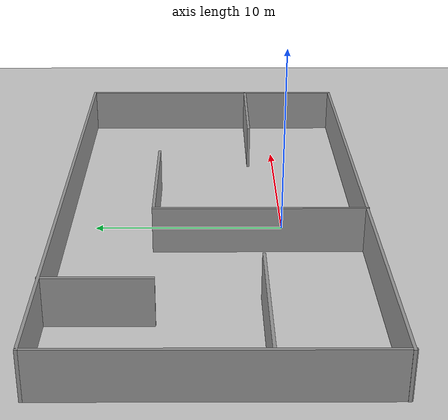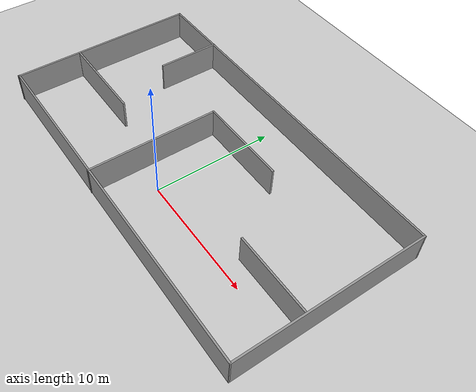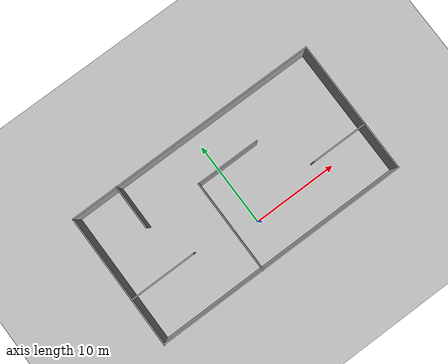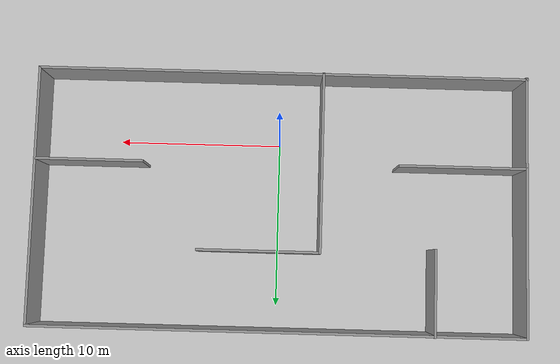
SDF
<sdf version="1.7">
 <world name="default">
  <light name="sun" type="directional">
   <pose>0 0 10 0 -0 0</pose>
   <diffuse>0.8 0.8 0.8 1</diffuse>
   <specular>0.2 0.2 0.2 1</specular>
   <attenuation>
    <range>1000</range>
    <constant>0.9</constant>
    <linear>0.01</linear>
    <quadratic>0.001</quadratic>
   </attenuation>
   <direction>-0.5 0.1 -0.9</direction>
   <spot><inner_angle>0</inner_angle><outer_angle>0</outer_angle><falloff>0</falloff></spot>
  </light>
  <model name="ground_plane">
   <static>1</static>
   <link name="link">
    <collision name="collision">
     <geometry><plane><normal>0 0 1</normal><size>100 100</size></plane></geometry>
     <surface>
      <contact><collide_bitmask>65535</collide_bitmask></contact>
      <friction><ode><mu>100</mu><mu2>50</mu2></ode></friction>
     </surface>
    </collision>
    <visual name="visual">
     <cast_shadows>0</cast_shadows>
     <geometry><plane><normal>0 0 1</normal><size>100 100</size></plane></geometry>
     <material>
      <script><uri>file://media/materials/scripts/gazebo.material</uri><name>Gazebo/Grey</name></script>
     </material>
    </visual>
   </link>
  </model>
  <gravity>0 0 -9.8</gravity>
  <magnetic_field>6e-06 2.3e-05 -4.2e-05</magnetic_field>
  <atmosphere type="adiabatic"/>
  <physics type="ode">
   <max_step_size>0.001</max_step_size>
   <real_time_factor>1</real_time_factor>
   <real_time_update_rate>1000</real_time_update_rate>
  </physics>
  <scene><ambient>0.4 0.4 0.4 1</ambient><background>0.7 0.7 0.7 1</background><shadows>1</shadows></scene>
  <spherical_coordinates>
   <surface_model>EARTH_WGS84</surface_model>
   <latitude_deg>0</latitude_deg>
   <longitude_deg>0</longitude_deg>
   <elevation>0</elevation>
   <heading_deg>0</heading_deg>
  </spherical_coordinates>
  <model name="world_demo2">
   <pose>-0.091509 3.68635 0 0 -0 0</pose>
   <link name="Wall_0">
    <collision name="Wall_0_Collision">
     <geometry><box><size>29.75 0.15 2.5</size></box></geometry>
     <pose>0 0 1.25 0 -0 0</pose>
    </collision>
    <visual name="Wall_0_Visual">
     <pose>0 0 1.25 0 -0 0</pose>
     <geometry><box><size>29.75 0.15 2.5</size></box></geometry>
     <material>
      <script><uri>file://media/materials/scripts/gazebo.material</uri><name>Gazebo/Grey</name></script>
      <ambient>1 1 1 1</ambient>
     </material>
     <meta><layer>0</layer></meta>
    </visual>
    <pose>-0.011621 -7.77009 0 0 -0 3.14159</pose>
   </link>
   <link name="Wall_11">
    <collision name="Wall_11_Collision">
     <geometry><box><size>5.25 0.15 2.5</size></box></geometry>
     <pose>0 0 1.25 0 -0 0</pose>
    </collision>
    <visual name="Wall_11_Visual">
     <pose>0 0 1.25 0 -0 0</pose>
     <geometry><box><size>5.25 0.15 2.5</size></box></geometry>
     <material>
      <script><uri>file://media/materials/scripts/gazebo.material</uri><name>Gazebo/Grey</name></script>
      <ambient>1 1 1 1</ambient>
     </material>
     <meta><layer>0</layer></meta>
    </visual>
    <pose>-9.35647 5.26635 0 0 -0 -1.5708</pose>
   </link>
   <link name="Wall_13">
    <collision name="Wall_13_Collision">
     <geometry><box><size>6.5 0.15 2.5</size></box></geometry>
     <pose>0 0 1.25 0 -0 0</pose>
    </collision>
    <visual name="Wall_13_Visual">
     <pose>0 0 1.25 0 -0 0</pose>
     <geometry><box><size>6.5 0.15 2.5</size></box></geometry>
     <material>
      <script><uri>file://media/materials/scripts/gazebo.material</uri><name>Gazebo/Grey</name></script>
      <ambient>1 1 1 1</ambient>
     </material>
     <meta><layer>0</layer></meta>
    </visual>
    <pose>11.5279 -2.18862 0 0 -0 0</pose>
   </link>
   <link name="Wall_2">
    <collision name="Wall_2_Collision">
     <geometry><box><size>15.7038 0.15 2.5</size></box></geometry>
     <pose>0 0 1.25 0 -0 0</pose>
    </collision>
    <visual name="Wall_2_Visual">
     <pose>0 0 1.25 0 -0 0</pose>
     <geometry><box><size>15.7038 0.15 2.5</size></box></geometry>
     <material>
      <script><uri>file://media/materials/scripts/gazebo.material</uri><name>Gazebo/Grey</name></script>
      <ambient>1 1 1 1</ambient>
     </material>
     <meta><layer>0</layer></meta>
    </visual>
    <pose>14.7999 0.006783 0 0 -0 1.56931</pose>
   </link>
   <link name="Wall_3">
    <collision name="Wall_3_Collision">
     <geometry><box><size>29.75 0.15 2.5</size></box></geometry>
     <pose>0 0 1.25 0 -0 0</pose>
    </collision>
    <visual name="Wall_3_Visual">
     <pose>0 0 1.25 0 -0 0</pose>
     <geometry><box><size>29.75 0.15 2.5</size></box></geometry>
     <material>
      <script><uri>file://media/materials/scripts/gazebo.material</uri><name>Gazebo/Grey</name></script>
      <ambient>1 1 1 1</ambient>
     </material>
     <meta><layer>0</layer></meta>
    </visual>
    <pose>0.011509 7.78365 0 0 -0 3.14159</pose>
   </link>
   <link name="Wall_4">
    <collision name="Wall_4_Collision">
     <geometry><box><size>15.75 0.15 2.5</size></box></geometry>
     <pose>0 0 1.25 0 -0 0</pose>
    </collision>
    <visual name="Wall_4_Visual">
     <pose>0 0 1.25 0 -0 0</pose>
     <geometry><box><size>15.75 0.15 2.5</size></box></geometry>
     <material>
      <script><uri>file://media/materials/scripts/gazebo.material</uri><name>Gazebo/Grey</name></script>
      <ambient>1 1 1 1</ambient>
     </material>
     <meta><layer>0</layer></meta>
    </visual>
    <pose>-14.7885 -0.016348 0 0 -0 -1.5708</pose>
   </link>
   <link name="Wall_6">
    <collision name="Wall_6_Collision">
     <geometry><box><size>7.75 0.15 2.5</size></box></geometry>
     <pose>0 0 1.25 0 -0 0</pose>
    </collision>
    <visual name="Wall_6_Visual">
     <pose>0 0 1.25 0 -0 0</pose>
     <geometry><box><size>7.75 0.15 2.5</size></box></geometry>
     <material>
      <script><uri>file://media/materials/scripts/gazebo.material</uri><name>Gazebo/Grey</name></script>
      <ambient>1 1 1 1</ambient>
     </material>
     <meta><layer>0</layer></meta>
    </visual>
    <pose>-10.975 -2.30336 0 0 -0 0</pose>
   </link>
   <link name="Wall_8">
    <collision name="Wall_8_Collision">
     <geometry><box><size>11 0.15 2.5</size></box></geometry>
     <pose>0 0 1.25 0 -0 0</pose>
    </collision>
    <visual name="Wall_8_Visual">
     <pose>0 0 1.25 0 -0 0</pose>
     <geometry><box><size>11 0.15 2.5</size></box></geometry>
     <material>
      <script><uri>file://media/materials/scripts/gazebo.material</uri><name>Gazebo/Grey</name></script>
      <ambient>1 1 1 1</ambient>
     </material>
     <meta><layer>0</layer></meta>
    </visual>
    <pose>-2.47653 -2.38032 0 0 -0 1.5708</pose>
   </link>
   <link name="Wall_9">
    <collision name="Wall_9_Collision">
     <geometry><box><size>7.5 0.15 2.5</size></box></geometry>
     <pose>0 0 1.25 0 -0 0</pose>
    </collision>
    <visual name="Wall_9_Visual">
     <pose>0 0 1.25 0 -0 0</pose>
     <geometry><box><size>7.5 0.15 2.5</size></box></geometry>
     <material>
      <script><uri>file://media/materials/scripts/gazebo.material</uri><name>Gazebo/Grey</name></script>
      <ambient>1 1 1 1</ambient>
     </material>
     <meta><layer>0</layer></meta>
    </visual>
    <pose>1.19847 3.04468 0 0 -0 0</pose>
   </link>
   <static>1</static>
  </model>
 </world>
</sdf>
